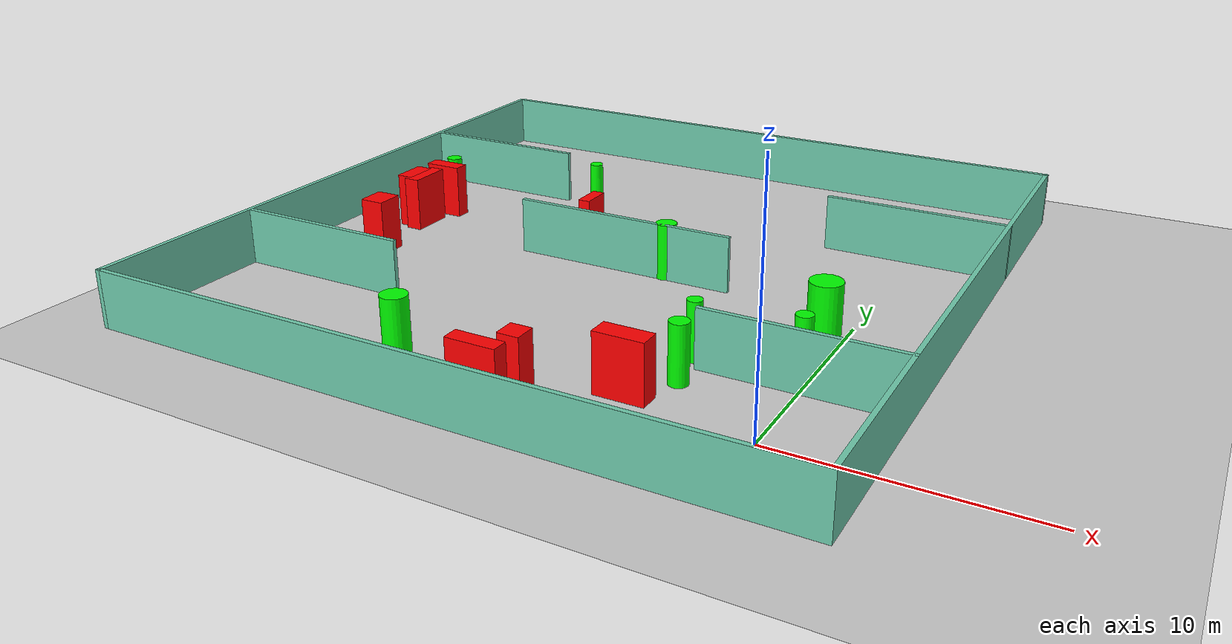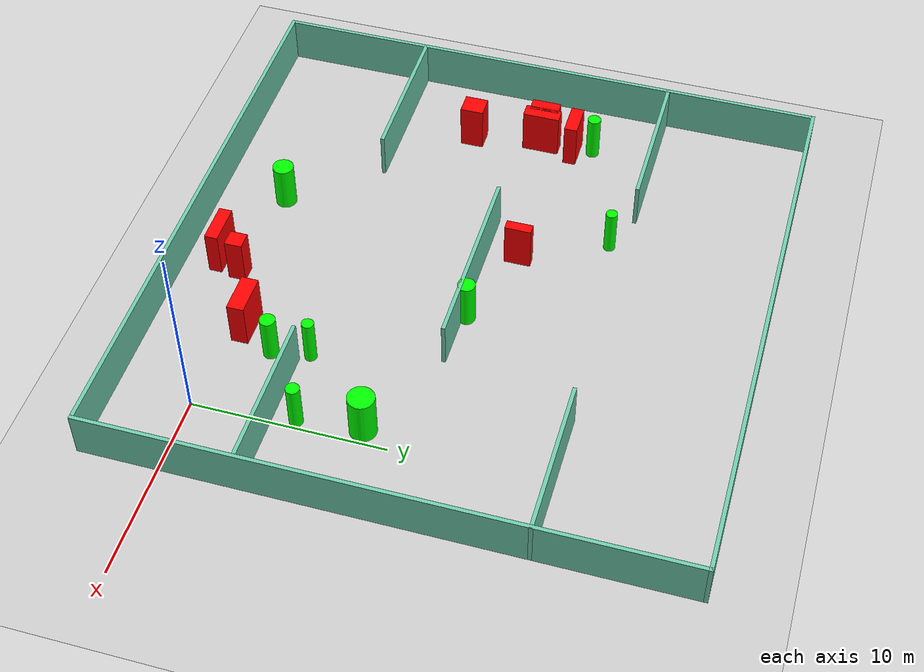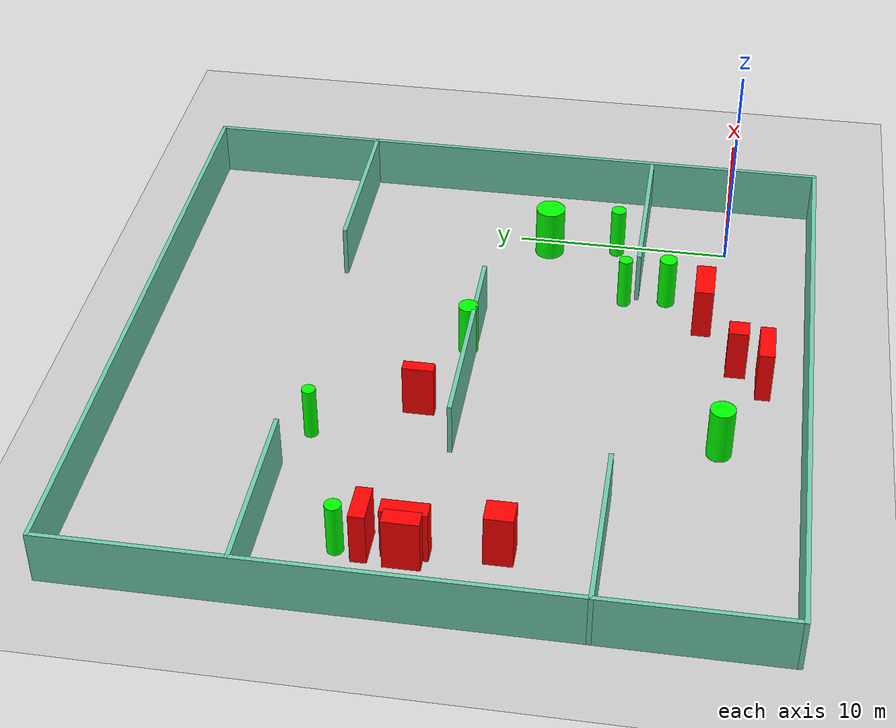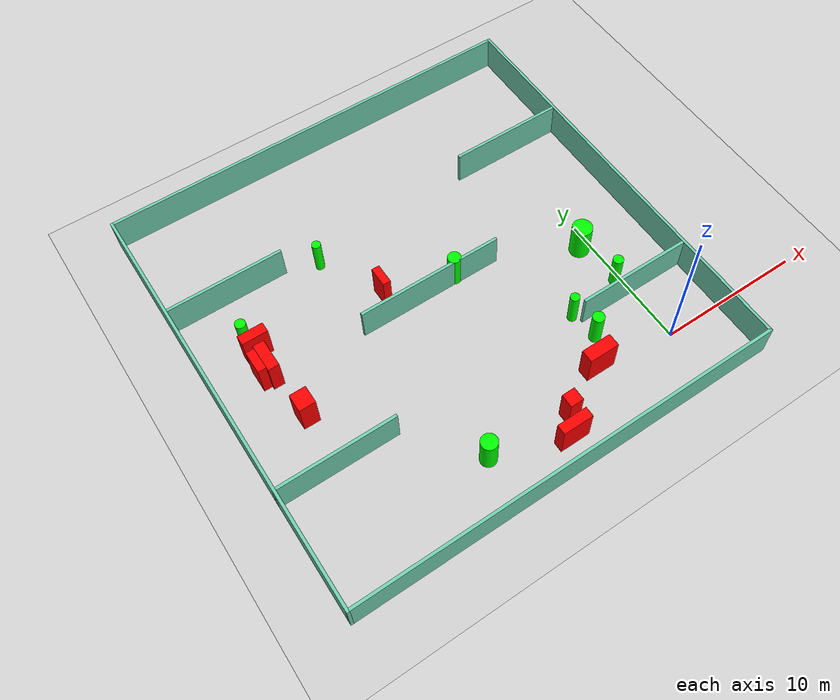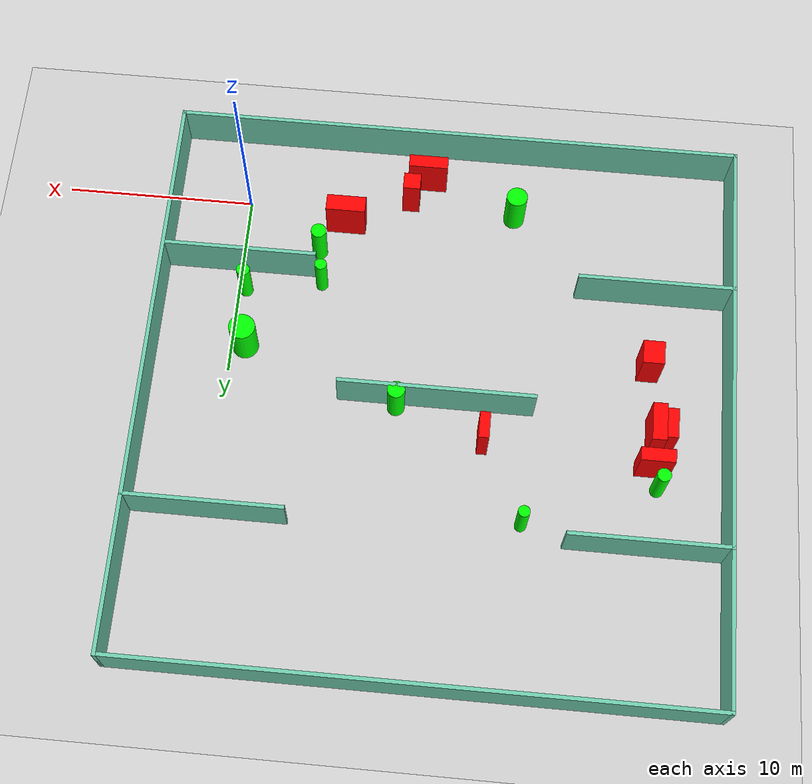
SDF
<sdf version="1.7">
 <world name="default">
  <light name="sun" type="directional">
   <pose>0 0 10 0 -0 0</pose>
   <diffuse>0.8 0.8 0.8 1</diffuse>
   <specular>0.2 0.2 0.2 1</specular>
   <attenuation>
    <range>1000</range>
    <constant>0.9</constant>
    <linear>0.01</linear>
    <quadratic>0.001</quadratic>
   </attenuation>
   <direction>-0.5 0.1 -0.9</direction>
   <spot><inner_angle>0</inner_angle><outer_angle>0</outer_angle><falloff>0</falloff></spot>
  </light>
  <model name="ground_plane">
   <static>1</static>
   <link name="link">
    <collision name="collision">
     <geometry><plane><normal>0 0 1</normal><size>100 100</size></plane></geometry>
     <surface>
      <contact><collide_bitmask>65535</collide_bitmask></contact>
      <friction><ode><mu>100</mu><mu2>50</mu2></ode></friction>
     </surface>
    </collision>
    <visual name="visual">
     <cast_shadows>0</cast_shadows>
     <geometry><plane><normal>0 0 1</normal><size>100 100</size></plane></geometry>
     <material>
      <script><uri>file://media/materials/scripts/gazebo.material</uri><name>Gazebo/Grey</name></script>
     </material>
    </visual>
   </link>
  </model>
  <gravity>0 0 -9.8</gravity>
  <magnetic_field>6e-06 2.3e-05 -4.2e-05</magnetic_field>
  <atmosphere type="adiabatic"/>
  <physics type="ode">
   <max_step_size>0.001</max_step_size>
   <real_time_factor>1</real_time_factor>
   <real_time_update_rate>1000</real_time_update_rate>
  </physics>
  <scene><ambient>0.4 0.4 0.4 1</ambient><background>0.7 0.7 0.7 1</background><shadows>1</shadows></scene>
  <spherical_coordinates>
   <surface_model>EARTH_WGS84</surface_model>
   <latitude_deg>0</latitude_deg>
   <longitude_deg>0</longitude_deg>
   <elevation>0</elevation>
   <heading_deg>0</heading_deg>
  </spherical_coordinates>
  <model name="my_base_walls">
   <link name="Wall_10">
    <collision name="Wall_10_Collision">
     <geometry><box><size>8.2 0.2 2.5</size></box></geometry>
     <pose>0 0 1.25 0 -0 0</pose>
    </collision>
    <visual name="Wall_10_Visual">
     <pose>0 0 1.25 0 -0 0</pose>
     <geometry><box><size>8.2 0.2 2.5</size></box></geometry>
     <material>
      <script><uri>file://media/materials/scripts/gazebo.material</uri><name>Gazebo/Grey</name></script>
      <ambient>0.435294 0.796078 0.67451 1</ambient>
     </material>
     <meta><layer>0</layer></meta>
    </visual>
    <pose>-11 -7 0 0 -0 0</pose>
   </link>
   <link name="Wall_12">
    <collision name="Wall_12_Collision">
     <geometry><box><size>8.2 0.2 2.5</size></box></geometry>
     <pose>0 0 1.25 0 -0 0</pose>
    </collision>
    <visual name="Wall_12_Visual">
     <pose>0 0 1.25 0 -0 0</pose>
     <geometry><box><size>8.2 0.2 2.5</size></box></geometry>
     <material>
      <script><uri>file://media/materials/scripts/gazebo.material</uri><name>Gazebo/Grey</name></script>
      <ambient>0.435294 0.796078 0.67451 1</ambient>
     </material>
     <meta><layer>0</layer></meta>
    </visual>
    <pose>-11 7 0 0 -0 0</pose>
   </link>
   <link name="Wall_14">
    <collision name="Wall_14_Collision">
     <geometry><box><size>8.2 0.2 2.5</size></box></geometry>
     <pose>0 0 1.25 0 -0 0</pose>
    </collision>
    <visual name="Wall_14_Visual">
     <pose>0 0 1.25 0 -0 0</pose>
     <geometry><box><size>8.2 0.2 2.5</size></box></geometry>
     <material>
      <script><uri>file://media/materials/scripts/gazebo.material</uri><name>Gazebo/Grey</name></script>
      <ambient>0.435294 0.796078 0.67451 1</ambient>
     </material>
     <meta><layer>0</layer></meta>
    </visual>
    <pose>11 7 0 0 -0 3.14159</pose>
   </link>
   <link name="Wall_16">
    <collision name="Wall_16_Collision">
     <geometry><box><size>10.2 0.2 2.5</size></box></geometry>
     <pose>0 0 1.25 0 -0 0</pose>
    </collision>
    <visual name="Wall_16_Visual">
     <pose>0 0 1.25 0 -0 0</pose>
     <geometry><box><size>10.2 0.2 2.5</size></box></geometry>
     <material>
      <script><uri>file://media/materials/scripts/gazebo.material</uri><name>Gazebo/Grey</name></script>
      <ambient>0.435294 0.796078 0.67451 1</ambient>
     </material>
     <meta><layer>0</layer></meta>
    </visual>
    <pose>0 0 0 0 -0 3.14159</pose>
   </link>
   <link name="Wall_2">
    <collision name="Wall_2_Collision">
     <geometry><box><size>30.2 0.2 2.5</size></box></geometry>
     <pose>0 0 1.25 0 -0 0</pose>
    </collision>
    <visual name="Wall_2_Visual">
     <pose>0 0 1.25 0 -0 0</pose>
     <geometry><box><size>30.2 0.2 2.5</size></box></geometry>
     <material>
      <script><uri>file://media/materials/scripts/gazebo.material</uri><name>Gazebo/Grey</name></script>
      <ambient>0.435294 0.796078 0.67451 1</ambient>
     </material>
     <meta><layer>0</layer></meta>
    </visual>
    <pose>0 -15 0 0 -0 3.14159</pose>
   </link>
   <link name="Wall_3">
    <collision name="Wall_3_Collision">
     <geometry><box><size>30.2 0.2 2.5</size></box></geometry>
     <pose>0 0 1.25 0 -0 0</pose>
    </collision>
    <visual name="Wall_3_Visual">
     <pose>0 0 1.25 0 -0 0</pose>
     <geometry><box><size>30.2 0.2 2.5</size></box></geometry>
     <material>
      <script><uri>file://media/materials/scripts/gazebo.material</uri><name>Gazebo/Grey</name></script>
      <ambient>0.435294 0.796078 0.67451 1</ambient>
     </material>
     <meta><layer>0</layer></meta>
    </visual>
    <pose>-15 0 0 0 -0 1.5708</pose>
   </link>
   <link name="Wall_4">
    <collision name="Wall_4_Collision">
     <geometry><box><size>30.2 0.2 2.5</size></box></geometry>
     <pose>0 0 1.25 0 -0 0</pose>
    </collision>
    <visual name="Wall_4_Visual">
     <pose>0 0 1.25 0 -0 0</pose>
     <geometry><box><size>30.2 0.2 2.5</size></box></geometry>
     <material>
      <script><uri>file://media/materials/scripts/gazebo.material</uri><name>Gazebo/Grey</name></script>
      <ambient>0.435294 0.796078 0.67451 1</ambient>
     </material>
     <meta><layer>0</layer></meta>
    </visual>
    <pose>0 15 0 0 -0 0</pose>
   </link>
   <link name="Wall_6">
    <collision name="Wall_6_Collision">
     <geometry><box><size>30.2 0.2 2.5</size></box></geometry>
     <pose>0 0 1.25 0 -0 0</pose>
    </collision>
    <visual name="Wall_6_Visual">
     <pose>0 0 1.25 0 -0 0</pose>
     <geometry><box><size>30.2 0.2 2.5</size></box></geometry>
     <material>
      <script><uri>file://media/materials/scripts/gazebo.material</uri><name>Gazebo/Grey</name></script>
      <ambient>0.435294 0.796078 0.67451 1</ambient>
     </material>
     <meta><layer>0</layer></meta>
    </visual>
    <pose>15 0 0 0 -0 1.5708</pose>
   </link>
   <link name="Wall_8">
    <collision name="Wall_8_Collision">
     <geometry><box><size>8.2 0.2 2.5</size></box></geometry>
     <pose>0 0 1.25 0 -0 0</pose>
    </collision>
    <visual name="Wall_8_Visual">
     <pose>0 0 1.25 0 -0 0</pose>
     <geometry><box><size>8.2 0.2 2.5</size></box></geometry>
     <material>
      <script><uri>file://media/materials/scripts/gazebo.material</uri><name>Gazebo/Grey</name></script>
      <ambient>0.435294 0.796078 0.67451 1</ambient>
     </material>
     <meta><layer>0</layer></meta>
    </visual>
    <pose>11 -7 0 0 -0 3.14159</pose>
   </link>
   <static>1</static>
   <pose>-11 11 0 0 -0 0</pose>
  </model>
  <model name="cylinder1">
   <static>1</static>
   <link name="link">
    <inertial>
     <mass>1</mass>
     <inertia><ixx>0.5</ixx><ixy>0</ixy><ixz>0</ixz><iyy>0.5</iyy><iyz>0</iyz><izz>1</izz></inertia>
    </inertial>
    <collision name="collision">
     <geometry><cylinder><radius>0.3533298160223979</radius><length>2.5</length></cylinder></geometry>
    </collision>
    <visual name="visual">
     <geometry><cylinder><radius>0.3533298160223979</radius><length>2.5</length></cylinder></geometry>
     <material>
      <ambient>0 1 0 1</ambient>
      <diffuse>0 1 0 1</diffuse>
      <specular>0.1 0.1 0.1 1</specular>
      <emissive>0 0 0 0</emissive>
     </material>
    </visual>
   </link>
   <pose>-22.577272429678327 14.603659793853563 1.25 0 0 0</pose>
  </model>
  <model name="cylinder2">
   <static>1</static>
   <link name="link">
    <inertial>
     <mass>1</mass>
     <inertia><ixx>0.5</ixx><ixy>0</ixy><ixz>0</ixz><iyy>0.5</iyy><iyz>0</iyz><izz>1</izz></inertia>
    </inertial>
    <collision name="collision">
     <geometry><cylinder><radius>0.55373828041566</radius><length>2.5</length></cylinder></geometry>
    </collision>
    <visual name="visual">
     <geometry><cylinder><radius>0.55373828041566</radius><length>2.5</length></cylinder></geometry>
     <material>
      <ambient>0 1 0 1</ambient>
      <diffuse>0 1 0 1</diffuse>
      <specular>0.1 0.1 0.1 1</specular>
      <emissive>0 0 0 0</emissive>
     </material>
    </visual>
   </link>
   <pose>-14.426616474270297 -0.38079213049480254 1.25 0 0 0</pose>
  </model>
  <model name="cylinder3">
   <static>1</static>
   <link name="link">
    <inertial>
     <mass>1</mass>
     <inertia><ixx>0.5</ixx><ixy>0</ixy><ixz>0</ixz><iyy>0.5</iyy><iyz>0</iyz><izz>1</izz></inertia>
    </inertial>
    <collision name="collision">
     <geometry><cylinder><radius>0.6877222028768627</radius><length>2.5</length></cylinder></geometry>
    </collision>
    <visual name="visual">
     <geometry><cylinder><radius>0.6877222028768627</radius><length>2.5</length></cylinder></geometry>
     <material>
      <ambient>0 1 0 1</ambient>
      <diffuse>0 1 0 1</diffuse>
      <specular>0.1 0.1 0.1 1</specular>
      <emissive>0 0 0 0</emissive>
     </material>
    </visual>
   </link>
   <pose>-0.7690456200837694 8.532883645492447 1.25 0 0 0</pose>
  </model>
  <model name="cylinder4">
   <static>1</static>
   <link name="link">
    <inertial>
     <mass>1</mass>
     <inertia><ixx>0.5</ixx><ixy>0</ixy><ixz>0</ixz><iyy>0.5</iyy><iyz>0</iyz><izz>1</izz></inertia>
    </inertial>
    <collision name="collision">
     <geometry><cylinder><radius>0.40279534925149857</radius><length>2.5</length></cylinder></geometry>
    </collision>
    <visual name="visual">
     <geometry><cylinder><radius>0.40279534925149857</radius><length>2.5</length></cylinder></geometry>
     <material>
      <ambient>0 1 0 1</ambient>
      <diffuse>0 1 0 1</diffuse>
      <specular>0.1 0.1 0.1 1</specular>
      <emissive>0 0 0 0</emissive>
     </material>
    </visual>
   </link>
   <pose>-4.096271301377975 2.6175908283924567 1.25 0 0 0</pose>
  </model>
  <model name="cylinder5">
   <static>1</static>
   <link name="link">
    <inertial>
     <mass>1</mass>
     <inertia><ixx>0.5</ixx><ixy>0</ixy><ixz>0</ixz><iyy>0.5</iyy><iyz>0</iyz><izz>1</izz></inertia>
    </inertial>
    <collision name="collision">
     <geometry><cylinder><radius>0.3155053037072685</radius><length>2.5</length></cylinder></geometry>
    </collision>
    <visual name="visual">
     <geometry><cylinder><radius>0.3155053037072685</radius><length>2.5</length></cylinder></geometry>
     <material>
      <ambient>0 1 0 1</ambient>
      <diffuse>0 1 0 1</diffuse>
      <specular>0.1 0.1 0.1 1</specular>
      <emissive>0 0 0 0</emissive>
     </material>
    </visual>
   </link>
   <pose>-4.416733965810135 4.580607357728434 1.25 0 0 0</pose>
  </model>
  <model name="cylinder6">
   <static>1</static>
   <link name="link">
    <inertial>
     <mass>1</mass>
     <inertia><ixx>0.5</ixx><ixy>0</ixy><ixz>0</ixz><iyy>0.5</iyy><iyz>0</iyz><izz>1</izz></inertia>
    </inertial>
    <collision name="collision">
     <geometry><cylinder><radius>0.35101756246894333</radius><length>2.5</length></cylinder></geometry>
    </collision>
    <visual name="visual">
     <geometry><cylinder><radius>0.35101756246894333</radius><length>2.5</length></cylinder></geometry>
     <material>
      <ambient>0 1 0 1</ambient>
      <diffuse>0 1 0 1</diffuse>
      <specular>0.1 0.1 0.1 1</specular>
      <emissive>0 0 0 0</emissive>
     </material>
    </visual>
   </link>
   <pose>-0.4054563335957653 5.268064580789426 1.25 0 0 0</pose>
  </model>
  <model name="cylinder7">
   <static>1</static>
   <link name="link">
    <inertial>
     <mass>1</mass>
     <inertia><ixx>0.5</ixx><ixy>0</ixy><ixz>0</ixz><iyy>0.5</iyy><iyz>0</iyz><izz>1</izz></inertia>
    </inertial>
    <collision name="collision">
     <geometry><cylinder><radius>0.4540281411929348</radius><length>2.5</length></cylinder></geometry>
    </collision>
    <visual name="visual">
     <geometry><cylinder><radius>0.4540281411929348</radius><length>2.5</length></cylinder></geometry>
     <material>
      <ambient>0 1 0 1</ambient>
      <diffuse>0 1 0 1</diffuse>
      <specular>0.1 0.1 0.1 1</specular>
      <emissive>0 0 0 0</emissive>
     </material>
    </visual>
   </link>
   <pose>-8.984302571675233 11.288137454026685 1.25 0 0 0</pose>
  </model>
  <model name="cylinder8">
   <static>1</static>
   <link name="link">
    <inertial>
     <mass>1</mass>
     <inertia><ixx>0.5</ixx><ixy>0</ixy><ixz>0</ixz><iyy>0.5</iyy><iyz>0</iyz><izz>1</izz></inertia>
    </inertial>
    <collision name="collision">
     <geometry><cylinder><radius>0.30330125267002045</radius><length>2.5</length></cylinder></geometry>
    </collision>
    <visual name="visual">
     <geometry><cylinder><radius>0.30330125267002045</radius><length>2.5</length></cylinder></geometry>
     <material>
      <ambient>0 1 0 1</ambient>
      <diffuse>0 1 0 1</diffuse>
      <specular>0.1 0.1 0.1 1</specular>
      <emissive>0 0 0 0</emissive>
     </material>
    </visual>
   </link>
   <pose>-15.79483810761512 17.11327605559519 1.25 0 0 0</pose>
  </model>
  <model name="box1">
   <static>1</static>
   <link name="link">
    <inertial>
     <mass>1</mass>
     <inertia><ixx>0.083</ixx><ixy>0</ixy><ixz>0</ixz><iyy>0.083</iyy><iyz>0</iyz><izz>0.083</izz></inertia>
    </inertial>
    <collision name="collision">
     <geometry><box><size>0.9096451591856638 0.9164402195232595 2.5</size></box></geometry>
    </collision>
    <visual name="visual">
     <geometry><box><size>0.9096451591856638 0.9164402195232595 2.5</size></box></geometry>
     <material>
      <ambient>1 0 0 1</ambient>
      <diffuse>1 0 0 1</diffuse>
      <specular>0.1 0.1 0.1 1</specular>
      <emissive>0 0 0 0</emissive>
     </material>
    </visual>
    <sensor name="my_contact" type="contact">
     <contact><collision>box_collision</collision><topic>__default_topic__</topic></contact>
    </sensor>
   </link>
   <pose>-8.767110428549625 -0.8392091015078487 1.25 0 0 0</pose>
  </model>
  <model name="box2">
   <static>1</static>
   <link name="link">
    <inertial>
     <mass>1</mass>
     <inertia><ixx>0.083</ixx><ixy>0</ixy><ixz>0</ixz><iyy>0.083</iyy><iyz>0</iyz><izz>0.083</izz></inertia>
    </inertial>
    <collision name="collision">
     <geometry><box><size>1.1116718897354834 1.2402307204958904 2.5</size></box></geometry>
    </collision>
    <visual name="visual">
     <geometry><box><size>1.1116718897354834 1.2402307204958904 2.5</size></box></geometry>
     <material>
      <ambient>1 0 0 1</ambient>
      <diffuse>1 0 0 1</diffuse>
      <specular>0.1 0.1 0.1 1</specular>
      <emissive>0 0 0 0</emissive>
     </material>
    </visual>
    <sensor name="my_contact" type="contact">
     <contact><collision>box_collision</collision><topic>__default_topic__</topic></contact>
    </sensor>
   </link>
   <pose>-21.924000961570314 8.003578859520765 1.25 0 0 0</pose>
  </model>
  <model name="box3">
   <static>1</static>
   <link name="link">
    <inertial>
     <mass>1</mass>
     <inertia><ixx>0.083</ixx><ixy>0</ixy><ixz>0</ixz><iyy>0.083</iyy><iyz>0</iyz><izz>0.083</izz></inertia>
    </inertial>
    <collision name="collision">
     <geometry><box><size>2.0897027493664244 0.8861006944693546 2.5</size></box></geometry>
    </collision>
    <visual name="visual">
     <geometry><box><size>2.0897027493664244 0.8861006944693546 2.5</size></box></geometry>
     <material>
      <ambient>1 0 0 1</ambient>
      <diffuse>1 0 0 1</diffuse>
      <specular>0.1 0.1 0.1 1</specular>
      <emissive>0 0 0 0</emissive>
     </material>
    </visual>
    <sensor name="my_contact" type="contact">
     <contact><collision>box_collision</collision><topic>__default_topic__</topic></contact>
    </sensor>
   </link>
   <pose>-5.370247746832291 0.8395923298359609 1.25 0 0 0</pose>
  </model>
  <model name="box4">
   <static>1</static>
   <link name="link">
    <inertial>
     <mass>1</mass>
     <inertia><ixx>0.083</ixx><ixy>0</ixy><ixz>0</ixz><iyy>0.083</iyy><iyz>0</iyz><izz>0.083</izz></inertia>
    </inertial>
    <collision name="collision">
     <geometry><box><size>1.751981373481553 0.696242034071277 2.5</size></box></geometry>
    </collision>
    <visual name="visual">
     <geometry><box><size>1.751981373481553 0.696242034071277 2.5</size></box></geometry>
     <material>
      <ambient>1 0 0 1</ambient>
      <diffuse>1 0 0 1</diffuse>
      <specular>0.1 0.1 0.1 1</specular>
      <emissive>0 0 0 0</emissive>
     </material>
    </visual>
    <sensor name="my_contact" type="contact">
     <contact><collision>box_collision</collision><topic>__default_topic__</topic></contact>
    </sensor>
   </link>
   <pose>-22.284261745954513 13.55333181592691 1.25 0 0 0</pose>
  </model>
  <model name="box5">
   <static>1</static>
   <link name="link">
    <inertial>
     <mass>1</mass>
     <inertia><ixx>0.083</ixx><ixy>0</ixy><ixz>0</ixz><iyy>0.083</iyy><iyz>0</iyz><izz>0.083</izz></inertia>
    </inertial>
    <collision name="collision">
     <geometry><box><size>0.7474986456679128 1.978892016033057 2.5</size></box></geometry>
    </collision>
    <visual name="visual">
     <geometry><box><size>0.7474986456679128 1.978892016033057 2.5</size></box></geometry>
     <material>
      <ambient>1 0 0 1</ambient>
      <diffuse>1 0 0 1</diffuse>
      <specular>0.1 0.1 0.1 1</specular>
      <emissive>0 0 0 0</emissive>
     </material>
    </visual>
    <sensor name="my_contact" type="contact">
     <contact><collision>box_collision</collision><topic>__default_topic__</topic></contact>
    </sensor>
   </link>
   <pose>-22.320160014705365 11.763535708509162 1.25 0 0 0</pose>
  </model>
  <model name="box6">
   <static>1</static>
   <link name="link">
    <inertial>
     <mass>1</mass>
     <inertia><ixx>0.083</ixx><ixy>0</ixy><ixz>0</ixz><iyy>0.083</iyy><iyz>0</iyz><izz>0.083</izz></inertia>
    </inertial>
    <collision name="collision">
     <geometry><box><size>0.5382560292346048 1.3915792283247832 2.5</size></box></geometry>
    </collision>
    <visual name="visual">
     <geometry><box><size>0.5382560292346048 1.3915792283247832 2.5</size></box></geometry>
     <material>
      <ambient>1 0 0 1</ambient>
      <diffuse>1 0 0 1</diffuse>
      <specular>0.1 0.1 0.1 1</specular>
      <emissive>0 0 0 0</emissive>
     </material>
    </visual>
    <sensor name="my_contact" type="contact">
     <contact><collision>box_collision</collision><topic>__default_topic__</topic></contact>
    </sensor>
   </link>
   <pose>-13.569985352288706 12.757511692845906 1.25 0 0 0</pose>
  </model>
  <model name="box7">
   <static>1</static>
   <link name="link">
    <inertial>
     <mass>1</mass>
     <inertia><ixx>0.083</ixx><ixy>0</ixy><ixz>0</ixz><iyy>0.083</iyy><iyz>0</iyz><izz>0.083</izz></inertia>
    </inertial>
    <collision name="collision">
     <geometry><box><size>0.754595498591071 1.5734241417760184 2.5</size></box></geometry>
    </collision>
    <visual name="visual">
     <geometry><box><size>0.754595498591071 1.5734241417760184 2.5</size></box></geometry>
     <material>
      <ambient>1 0 0 1</ambient>
      <diffuse>1 0 0 1</diffuse>
      <specular>0.1 0.1 0.1 1</specular>
      <emissive>0 0 0 0</emissive>
     </material>
    </visual>
    <sensor name="my_contact" type="contact">
     <contact><collision>box_collision</collision><topic>__default_topic__</topic></contact>
    </sensor>
   </link>
   <pose>-22.88066689171817 11.788079515111646 1.25 0 0 0</pose>
  </model>
  <model name="box8">
   <static>1</static>
   <link name="link">
    <inertial>
     <mass>1</mass>
     <inertia><ixx>0.083</ixx><ixy>0</ixy><ixz>0</ixz><iyy>0.083</iyy><iyz>0</iyz><izz>0.083</izz></inertia>
    </inertial>
    <collision name="collision">
     <geometry><box><size>2.0896522171279597 0.6914595309211486 2.5</size></box></geometry>
    </collision>
    <visual name="visual">
     <geometry><box><size>2.0896522171279597 0.6914595309211486 2.5</size></box></geometry>
     <material>
      <ambient>1 0 0 1</ambient>
      <diffuse>1 0 0 1</diffuse>
      <specular>0.1 0.1 0.1 1</specular>
      <emissive>0 0 0 0</emissive>
     </material>
    </visual>
    <sensor name="my_contact" type="contact">
     <contact><collision>box_collision</collision><topic>__default_topic__</topic></contact>
    </sensor>
   </link>
   <pose>-9.557356979330654 -2.1113498543650757 1.25 0 0 0</pose>
  </model>
 </world>
</sdf>
